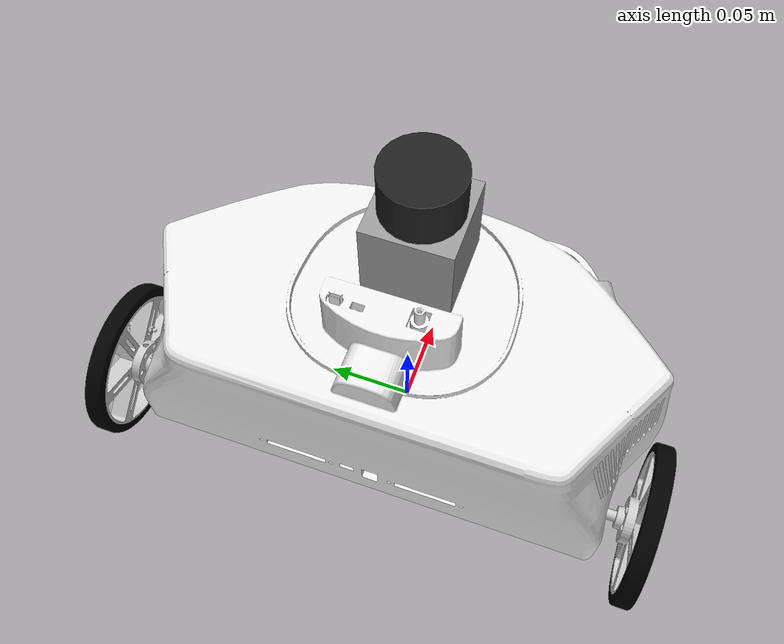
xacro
<?xml version="1.0"?>

<robot name="botmovil"
    xmlns:sensor="http://playerstage.sourceforge.net/gazebo/xmlschema/#sensor"
    xmlns:controller="http://playerstage.sourceforge.net/gazebo/xmlschema/#controller"
    xmlns:interface="http://playerstage.sourceforge.net/gazebo/xmlschema/#interface">

    <!-- Included URDF Files -->
    <include filename="$(find botmovil_description)/urdf/botmovil_base.xacro" />
    <include filename="$(find botmovil_description)/urdf/botmovil_laser_hokuyo_link.xacro" />

    <botmovil />

    <!-- BASE LASER ATTACHMENT -->
    <botmovil_hokuyo_laser parent="base_link">
        <origin xyz="0.02 0 0.0892" rpy="0 0 0" />
    </botmovil_hokuyo_laser>

</robot>

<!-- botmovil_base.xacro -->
<robot
    xmlns:sensor="http://playerstage.sourceforge.net/gazebo/xmlschema/#sensor"
    xmlns:controller="http://playerstage.sourceforge.net/gazebo/xmlschema/#controller"
    xmlns:interface="http://playerstage.sourceforge.net/gazebo/xmlschema/#interface">

    <!-- Included URDF Files -->
    <include filename="$(find botmovil_description)/urdf/materials.urdf.xacro" />
    <include filename="$(find botmovil_description)/urdf/botmovil_wheel.xacro" />
    <include filename="$(find botmovil_description)/urdf/gazebo.urdf.xacro"/>

    <macro name="botmovil">
        <!-- base_footprint is a fictitious link(frame) that is on the ground right below base_link origin,
             navigation stack depends on this frame -->
        <link name="base_footprint">
            <inertial>
                <mass value="0.0001" />
                <origin xyz="0 0 0" />
                <inertia ixx="0.0001" ixy="0.0" ixz="0.0"
                         iyy="0.0001" iyz="0.0"
                         izz="0.0001" />
            </inertial>

            <visual>
                <origin xyz="0 0 0" rpy="0 0 0" />
                <geometry>
                    <box size="0.001 0.001 0.001" />
                </geometry>
                <material name="Green" />
            </visual>

            <collision>
                <origin xyz="0 0 0.027615" rpy="0 0 0" />
                <geometry>
                  <box size="0.001 0.001 0.001" />
                </geometry>
            </collision>
        </link>

        <joint name="base_footprint_joint" type="fixed">
            <origin xyz="0 0 0.027615" rpy="0 0 0" />
            <parent link="base_footprint"/>
            <child link="base_link" />
        </joint>

        <!-- Links and Joints (i.e., the robot) -->
        <link name="base_link">
            <inertial>
                <mass value="1.35826" />
                <origin xyz="-0.01660 -0.00328 0.03108" />
                <inertia ixx="0.01125276766" ixy="-0.00010244389" ixz="-0.00022445513"
                         iyy="0.00458462921" iyz="0.00008426529"
                         izz="0.01359327745" />
            </inertial>

            <visual>
                <origin xyz="0 0 0" rpy="0 0 0" />
                <geometry>
                    <mesh filename="package://botmovil_description/meshes/collada/botmovil_base_link.dae"/>
                </geometry>
                <material name="White" />
            </visual>

            <collision>
                <origin xyz="0.015 0.0 0.06" rpy="0 0 0" />
                <geometry>
                    <box size="0.182 0.27 0.12"/>
                </geometry>
            </collision>
        </link>

	<!-- Components (battery, computer, controller), just visual -->
	<!-- Activate if base_link uses STL instead of .dae to improve render in rviz -->

  <joint name="front_castor_joint" type="fixed">
    <origin xyz="0.07113183 0 0" rpy="0 0 0"/>
    <parent link="base_link"/>
    <child link="front_wheel_link"/>
    <axis xyz="0 1 0"/>
  </joint>

  <link name="front_wheel_link">
    <inertial>
      <origin xyz="0 0 -0.0111444" />
      <mass value="0.0180356" />
      <inertia ixx="0.0000017" ixy="0.0" ixz="0.0"
        iyy="0.0000017" iyz="0.0" izz="0.0000016" />
    </inertial>

    <visual>
      <origin xyz="0 0 0" rpy="0 0 0"/>
      <geometry>
        <mesh filename="package://botmovil_description/meshes/collada/botmovil_caster_wheel_link.dae"/>
      </geometry>
    </visual>

    <collision>
      <origin xyz="0 0 -0.014915" rpy="0 0 0" />
      <geometry>
        <sphere radius="0.0127" />
      </geometry>
    </collision>
  </link>

        <!-- Wheels instantation -->

        <botmovil_wheel suffix="left" parent="base_link">
            <origin xyz="-0.05354817 0.15196129 0.017385" rpy="0 0 0" />
	    <origin xyz="0.0000409 -0.0014066 0.0000109"/>
	    <origin xyz="0 0 0" rpy="0 0 0" />
	    <origin xyz="0 0 0" rpy="0 1.5708 1.5708" />
        </botmovil_wheel>

        <botmovil_wheel suffix="right" parent="base_link">
            <origin xyz="-0.05354817 -0.15196129 0.017385" rpy="0 0 0" />
	    <origin xyz="0.0000409 0.0014066 0.0000109"/>
	    <origin xyz="0 0 0" rpy="3.14159 0 0" />
	    <origin xyz="0 0 0" rpy="0 1.5708 1.5708" />
        </botmovil_wheel>

    <!-- Gazebo simulated sensors -->
    <botmovil_base_gazebo />

    </macro>
</robot>

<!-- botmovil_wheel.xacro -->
<robot
    xmlns:sensor="http://playerstage.sourceforge.net/gazebo/xmlschema/#sensor"
    xmlns:controller="http://playerstage.sourceforge.net/gazebo/xmlschema/#controller"
    xmlns:interface="http://playerstage.sourceforge.net/gazebo/xmlschema/#interface">

    <macro name="botmovil_wheel" params="suffix parent *origin *origin2 *origin3 *origin4">
        <joint name="${parent}_${suffix}_wheel_joint" type="continuous">
            <insert_block name="origin" />
            <axis xyz="0 1 0" />
            <anchor xyz="0 0 0" />
            <limit effort="100" velocity="100" />
            <joint_properties damping="0.0" friction="0.0" />
            <parent link="${parent}" />
            <child link="${parent}_${suffix}_wheel_link" />
        </joint>

        <link name="${parent}_${suffix}_wheel_link">
            <inertial>
                <mass value="0.0520915" />
                <insert_block name="origin2" />
                <inertia  ixx="0.01125276766" ixy="-0.00010244389" ixz="-0.00022445513"
                          iyy="0.00458462921" iyz="0.00008426529"
                          izz="0.01359327745" />
            </inertial>

            <visual>
                <insert_block name="origin3" />
                <geometry>
                    <mesh filename="package://botmovil_description/meshes/collada/botmovil_wheel_link.dae"/>
                </geometry>
            </visual>

            <collision>
                <insert_block name="origin4" />
                <geometry>
                    <cylinder radius="0.045" length = "0.015"/>
                </geometry>
            </collision>
        </link>

        <gazebo reference="${parent}_${suffix}_wheel_link" >
            <mu1 value="100.0" />
            <mu2 value="100.0" />
            <kp  value="1000000.0" />
            <kd  value="1.0" />
        </gazebo>

        <transmission type="pr2_mechanism_model/SimpleTransmission" name="${parent}_${suffix}_wheel_trans">
            <actuator name="${parent}_${suffix}_wheel_motor" />
            <joint name="${parent}_${suffix}_wheel_joint" />
            <mechanicalReduction>1.0</mechanicalReduction>
        </transmission>
    </macro>
</robot>

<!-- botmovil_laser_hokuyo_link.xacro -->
<robot
    xmlns:sensor="http://playerstage.sourceforge.net/gazebo/xmlschema/#sensor"
    xmlns:controller="http://playerstage.sourceforge.net/gazebo/xmlschema/#controller"
    xmlns:interface="http://playerstage.sourceforge.net/gazebo/xmlschema/#interface">

    <macro name="botmovil_hokuyo_laser" params="parent *origin">
        <joint name="laser_base_mount_joint" type="fixed">
            <insert_block name="origin" />
            <parent link="${parent}"/>
            <child link="laser_base_link"/>
        </joint>

        <link name="laser_base_link" type="fixed">
            <inertial>
                <mass value="0.1"/>
                <origin xyz="0 0 0.0"/>
                <inertia ixx="0.1" ixy="0" ixz="0" iyy="0.1" iyz="0" izz="0.1"/>
            </inertial>

            <visual>
                <origin rpy="0 0 0" xyz="0 0 0.025"/>
                <geometry>
                    <box size="0.05 0.05 0.05"/>
                </geometry>
		<material name="Grey" />
            </visual>

            <collision>
                <origin rpy="0 0 0" xyz="0 0 0.025"/>
                <geometry>
                    <box size="0.05 0.05 0.05"/>
                </geometry>
            </collision>
        </link>

        <joint name="base_scan_joint" type="fixed" >
            <origin xyz="0 0 0.05" rpy="0 0 0" />
            <parent link="laser_base_link" />
            <child link="base_scan_link"/>
        </joint>

        <link name="base_scan_link" type="laser">
            <inertial>
                <mass value="0.1"/>
                <origin xyz="0 0 0.0"/>
                <inertia ixx="0.1" ixy="0" ixz="0" iyy="0.1" iyz="0" izz="0.1"/>
            </inertial>

            <visual>
                <origin rpy="0 0 0" xyz="0 0 0.014"/>
                <geometry>
                    <cylinder radius="0.0229" length="0.028"/>
                </geometry>
		<material name="Black" />
            </visual>

            <collision>
                <origin rpy="0 0 0" xyz="0 0 0.014"/>
                <geometry>
                    <cylinder radius="0.0229" length="0.028"/>
                </geometry>
            </collision>
        </link>

    <!-- Gazebo simulated sensors -->
    <botmovil_sim_hokuyo />

    </macro>
</robot>
